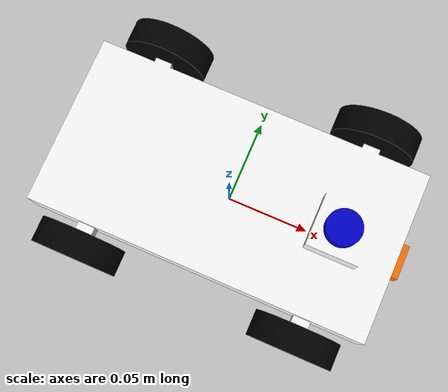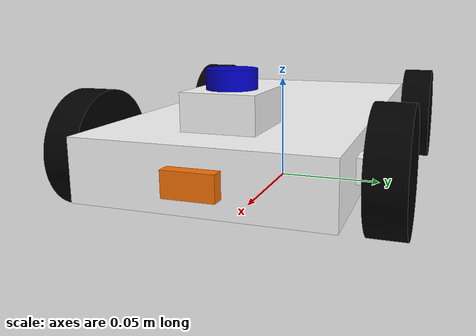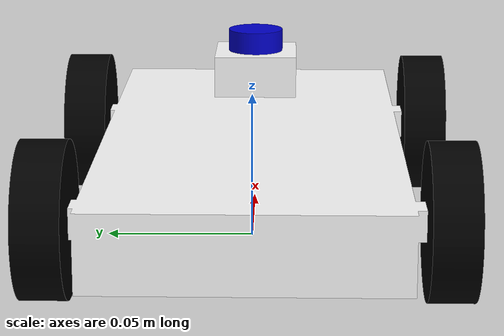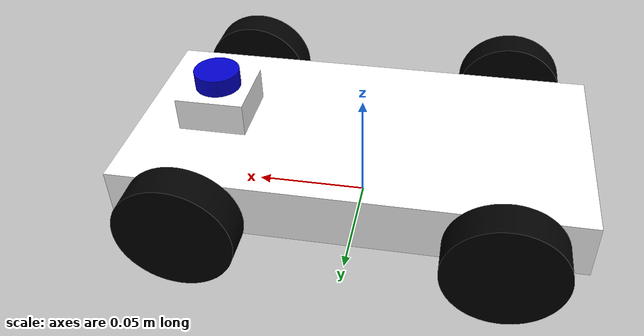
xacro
<?xml version="1.0" ?>
<robot name="my_rover" xmlns:xacro="http://www.ros.org/wiki/xacro">

<xacro:include filename="$(find my_4wheel_bot)/urdf/myrobot.trans" />
<xacro:include filename="$(find my_4wheel_bot)/urdf/myrobot.gazebo" />
<link name="base_link">
  <inertial>
    <origin xyz="-0.0017022308438409664 -8.821481103520157e-18 0.02552376333656643" rpy="0 0 0"/>
    <mass value="0.54643"/>
    <inertia ixx="0.000482" iyy="0.001869" izz="0.002284" ixy="0.0" iyz="-0.0" ixz="1.8e-05"/>
  </inertial>
  <visual>
    <origin xyz="0 0 0" rpy="0 0 3.14"/>
    <geometry>
      <mesh filename="package://my_4wheel_bot/meshes/base_link.stl" scale="0.001 0.001 0.001"/>
    </geometry>
    <material name="">
      <color rgba = "1.0 1.0 1.0 1.0"/>
    </material>
  </visual>
  <collision>
    <origin xyz="0 0 0" rpy="0 0 0"/>
    <geometry>
      <mesh filename="package://my_4wheel_bot/meshes/base_link.stl" scale="0.001 0.001 0.001"/>
    </geometry>
  </collision>
</link>

<link name="rear_right_wheel_1">
  <inertial>
    <origin xyz="0.0 -0.0075 -6.938893903907228e-18" rpy="0 0 0"/>
    <mass value="0.027390760948486005"/>
    <inertia ixx="5e-06" iyy="9e-06" izz="5e-06" ixy="0.0" iyz="-0.0" ixz="0.0"/>
  </inertial>
  <visual>
    <origin xyz="0.065 0.055 -0.025" rpy="0 0 0"/>
    <geometry>
      <mesh filename="package://my_4wheel_bot/meshes/front_left_wheel_1.stl" scale="0.001 0.001 0.001"/>
    </geometry>
    <material name="">
      <color rgba = "0.0 0.0 0.0 1.0"/>
    </material>
  </visual>
  <collision>
    <origin xyz="0.065 0.055 -0.025" rpy="0 0 0"/>
    <geometry>
      <mesh filename="package://my_4wheel_bot/meshes/front_left_wheel_1.stl" scale="0.001 0.001 0.001"/>
    </geometry>
  </collision>
</link>

<link name="front_right_wheel_1">
  <inertial>
    <origin xyz="-2.7755575615628914e-17 -0.0075 -6.938893903907228e-18" rpy="0 0 0"/>
    <mass value="0.027390760948486012"/>
    <inertia ixx="5e-06" iyy="9e-06" izz="5e-06" ixy="0.0" iyz="-0.0" ixz="0.0"/>
  </inertial>
  <visual>
    <origin xyz="-0.065 0.055 -0.025" rpy="0 0 0"/>
    <geometry>
      <mesh filename="package://my_4wheel_bot/meshes/rear_left_wheel_1.stl" scale="0.001 0.001 0.001"/>
    </geometry>
    <material name="">
      <color rgba = "0.0 0.0 0.0 1.0"/>
    </material>
  </visual>
  <collision>
    <origin xyz="-0.065 0.055 -0.025" rpy="0 0 0"/>
    <geometry>
      <mesh filename="package://my_4wheel_bot/meshes/rear_left_wheel_1.stl" scale="0.001 0.001 0.001"/>
    </geometry>
  </collision>
</link>

<link name="rear_left_wheel_1">
  <inertial>
    <origin xyz="0.0 0.0075 -6.938893903907228e-18" rpy="0 0 0"/>
    <mass value="0.027390760948486005"/>
    <inertia ixx="5e-06" iyy="9e-06" izz="5e-06" ixy="0.0" iyz="0.0" ixz="0.0"/>
  </inertial>
  <visual>
    <origin xyz="0.065 -0.055 -0.025" rpy="0 0 0"/>
    <geometry>
      <mesh filename="package://my_4wheel_bot/meshes/front_right_wheel_1.stl" scale="0.001 0.001 0.001"/>
    </geometry>
    <material name="">
      <color rgba = "0.0 0.0 0.0 1.0"/>
    </material>
  </visual>
  <collision>
    <origin xyz="0.065 -0.055 -0.025" rpy="0 0 0"/>
    <geometry>
      <mesh filename="package://my_4wheel_bot/meshes/front_right_wheel_1.stl" scale="0.001 0.001 0.001"/>
    </geometry>
  </collision>
</link>

<link name="front_left_wheel_1">
  <inertial>
    <origin xyz="-2.7755575615628914e-17 0.0075 -6.938893903907228e-18" rpy="0 0 0"/>
    <mass value="0.027390760948486012"/>
    <inertia ixx="5e-06" iyy="9e-06" izz="5e-06" ixy="0.0" iyz="0.0" ixz="0.0"/>
  </inertial>
  <visual>
    <origin xyz="-0.065 -0.055 -0.025" rpy="0 0 0"/>
    <geometry>
      <mesh filename="package://my_4wheel_bot/meshes/rear_right_wheel_1.stl" scale="0.001 0.001 0.001"/>
    </geometry>
    <material name="">
      <color rgba = "0.0 0.0 0.0 1.0"/>
    </material>
  </visual>
  <collision>
    <origin xyz="-0.065 -0.055 -0.025" rpy="0 0 0"/>
    <geometry>
      <mesh filename="package://my_4wheel_bot/meshes/rear_right_wheel_1.stl" scale="0.001 0.001 0.001"/>
    </geometry>
  </collision>
</link>

<link name="camera_1">
  <inertial>
    <origin xyz="-0.002500000000000016 0.0 -7.28583859910259e-17" rpy="0 0 0"/>
    <mass value="0.0010999999999999998"/>
    <inertia ixx="0.0" iyy="0.0" izz="0.0" ixy="0.0" iyz="0.0" ixz="0.0"/>
  </inertial>
  <visual>
    <origin xyz="0.1025 -0.0 -0.025" rpy="0 0 0"/>
    <geometry>
      <mesh filename="package://my_4wheel_bot/meshes/camera_1.stl" scale="0.001 0.001 0.001"/>
    </geometry>
    <material name="">
      <color rgba="0.9764705882352941 0.45098039215686275 0.023529411764705882 1.0"/>
    </material>
  </visual>
  <collision>
    <origin xyz="0.1025 -0.0 -0.025" rpy="0 0 0"/>
    <geometry>
      <mesh filename="package://my_4wheel_bot/meshes/camera_1.stl" scale="0.001 0.001 0.001"/>
    </geometry>
  </collision>
</link>

<link name="lidar_1">
  <inertial>
    <origin xyz="0.0 1.766974823035288e-18 0.003999999999999997" rpy="0 0 0"/>
    <mass value="0.0027646015351590167"/>
    <inertia ixx="0.0" iyy="0.0" izz="0.0" ixy="0.0" iyz="0.0" ixz="0.0"/>
  </inertial>
  <visual>
    <origin xyz="0.065 0.0 -0.0525" rpy="0 0 0"/>
    <geometry>
      <mesh filename="package://my_4wheel_bot/meshes/lidar_1.stl" scale="0.001 0.001 0.001"/>
    </geometry>
    <material name="">
      <color rgba="0.0 0.0 0.8 1.0"/>
    </material>
  </visual>
  <collision>
    <origin xyz="0.065 0.0 -0.0525" rpy="0 0 0"/>
    <geometry>
      <mesh filename="package://my_4wheel_bot/meshes/lidar_1.stl" scale="0.001 0.001 0.001"/>
    </geometry>
  </collision>
</link>

<joint name="rear_right_wheel_joint" type="continuous">
  <origin xyz="-0.065 -0.055 0.025" rpy="0 0 0"/>
  <parent link="base_link"/>
  <child link="rear_right_wheel_1"/>
  <axis xyz="0.0 1.0 0.0"/>
</joint>

<joint name="front_right_wheel_joint" type="continuous">
  <origin xyz="0.065 -0.055 0.025" rpy="0 0 0"/>
  <parent link="base_link"/>
  <child link="front_right_wheel_1"/>
  <axis xyz="0.0 1.0 0.0"/>
</joint>

<joint name="rear_left_wheel_joint" type="continuous">
  <origin xyz="-0.065 0.055 0.025" rpy="0 0 0"/>
  <parent link="base_link"/>
  <child link="rear_left_wheel_1"/>
  <axis xyz="0.0 1.0 0.0"/>
</joint>

<joint name="front_left_wheel_joint" type="continuous">
  <origin xyz="0.065 0.055 0.025" rpy="0 0 0"/>
  <parent link="base_link"/>
  <child link="front_left_wheel_1"/>
  <axis xyz="0.0 1.0 0.0"/>
</joint>

<joint name="camera_joint" type="fixed">
  <origin xyz="0.1025 0.0 0.025" rpy="0 0 0"/>
  <parent link="base_link"/>
  <child link="camera_1"/>
</joint>

<joint name="lidar_joint" type="fixed">
  <origin xyz="0.065 0.0 0.0525" rpy="0 0 0"/>
  <parent link="base_link"/>
  <child link="lidar_1"/>
</joint>

</robot>
